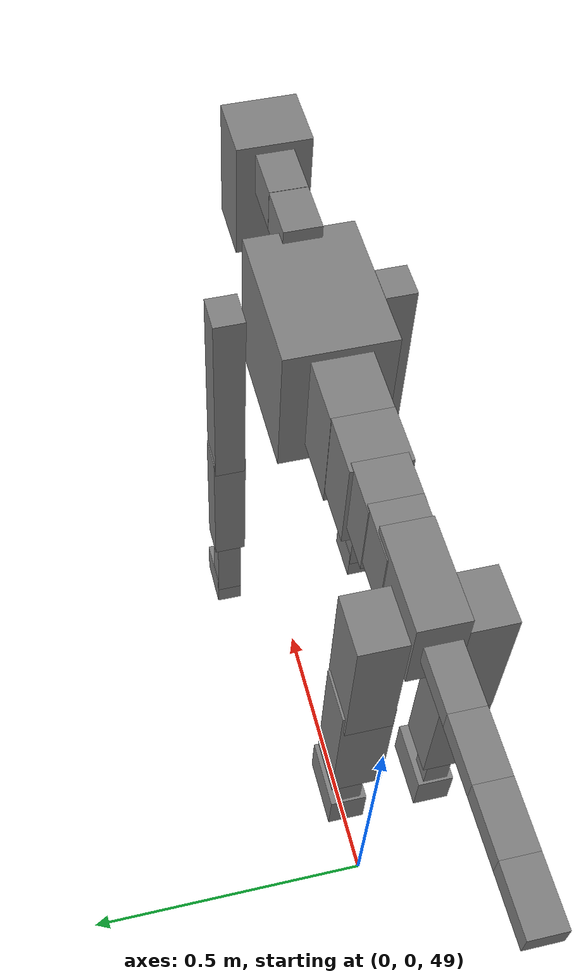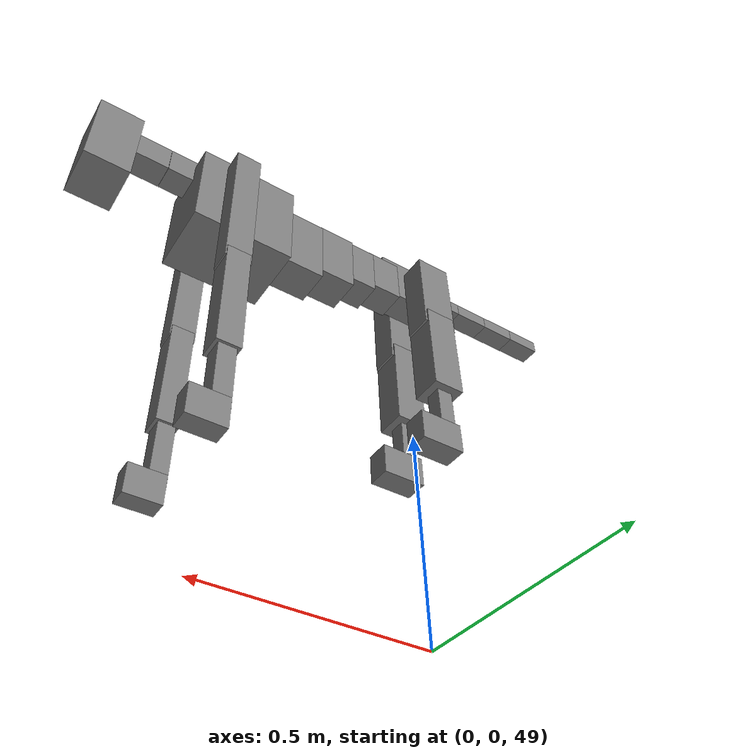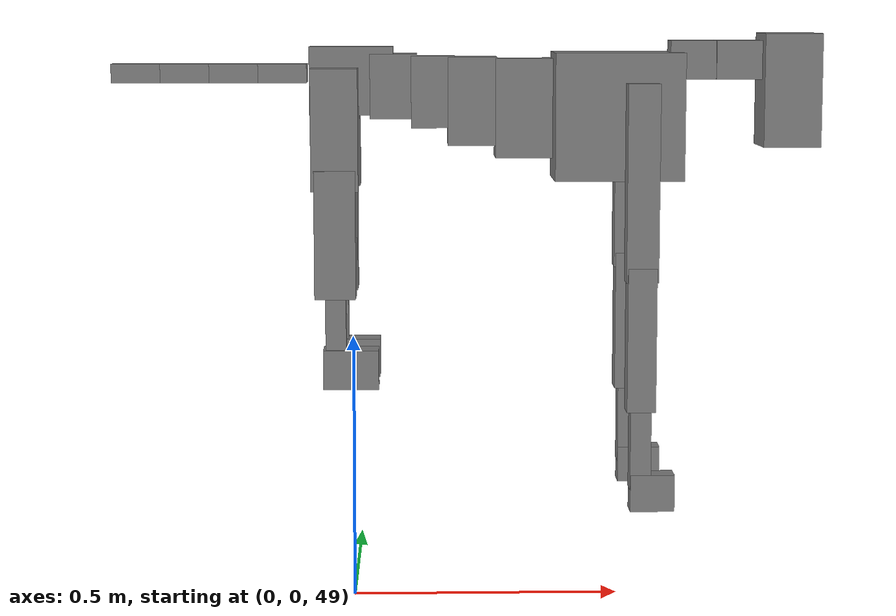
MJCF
<mujoco model="dog">

    <default>
        <joint armature="0.02" stiffness="1" damping="0.2" limited="true"/>
        <geom condim="3" friction="1 0.05 0.05" margin="0.01"/>
        <motor ctrllimited="true" ctrlrange="-1.0 1.0" forcelimited="true" gear="50"/>
    </default>

    <compiler inertiafromgeom="true" angle="radian"/>

    <option timestep="0.016" iterations="50" tolerance="1e-10" solver="Newton" jacobian="dense" cone="pyramidal"/>

    <size nconmax="20000" njmax="60000" nstack="5000000"/>
    <visual>
        <map force="0.1" zfar="30"/>
        <rgba haze="0.15 0.25 0.35 1"/>
        <quality shadowsize="2048"/>
        <global offwidth="800" offheight="800"/>
    </visual>

    <asset>
        <texture type="skybox" builtin="gradient" rgb1="0.3 0.5 0.7" rgb2="0 0 0" width="512" height="512"/>
        <texture name="texplane" type="2d" builtin="checker" rgb1=".2 .3 .4" rgb2=".1 0.15 0.2" width="512" height="512"
                 mark="cross" markrgb=".8 .8 .8"/>
        <texture name="texgeom" type="cube" builtin="flat" mark="cross" width="127" height="1278" rgb1="0.8 0.6 0.4"
                 rgb2="0.8 0.6 0.4" markrgb="1 1 1" random="0.01"/>

        <material name="matplane" reflectance="0.3" texture="texplane" texrepeat="1 1" texuniform="true"/>
        <material name="matgeom" texture="texgeom" texuniform="true" rgba="0.8 0.6 .4 1"/>
    </asset>

    <worldbody>
        <geom name="floor" pos="0 0 0" size="0 0 .25" type="plane" material="matplane" condim="3"/>

        <light directional="false" diffuse=".2 .2 .2" specular="0 0 0" pos="0 0 5" dir="0 0 -1" castshadow="false"/>
        <light mode="targetbodycom" target="torso" directional="false" diffuse=".8 .8 .8" specular="0.3 0.3 0.3"
               pos="0 0 4.0" dir="0 0 -1"/>

        <body name="root" pos="0 0 50">
            <freejoint name="root_1"/>
            <geom type="box" pos="0 0 -0.02" size="0.0774  0.0358  0.063" density="2030"/>

            <body name="spine1" pos="0.054 0 0">
                <joint name="spine1_y" axis="0 1 0" range="0 0.7" limited="true"/>
                <geom type="box" pos="0.02375 0 -0.03" size="0.04375  0.0375  0.05985" density="2030"/>

                <body name="spine2" pos="0.0612 0 0">
                    <joint name="spine2_y" axis="0 1 0" range="-0.15 0.15" limited="true"/>
                    <geom type="box" pos="0.03555  0  -0.04" size="0.04055  0.039  0.06615" density="2030"/>

                    <body name="spine3" pos="0.0730 0 0">
                        <joint name="spine3_y" axis="0 1 0" range="-0.15 0.15" limited="true"/>
                        <geom type="box" pos="0.03555  0  -0.057" size="0.04555  0.0445  0.081" density="2030"/>

                        <body name="spine4" pos="0.0780 0 0">
                            <joint name="spine4_y" axis="0 1 0" range="-0.15 0.15" limited="true"/>
                            <geom type="box" pos="0.05265  0  -0.07" size="0.05265  0.045  0.09135" density="2030"/>

                            <body name="torso" pos="0.1082 0 0">
                                <joint name="torso_y" axis="0 1 0" range="-0.15 0.15" limited="true"/>
                                <geom type="box" pos="0.11925  0  -0.085" size="0.11925  0.085  0.11745"
                                      density="2030"/>

                                <body name="neck1" pos="0.2160  0   0.0180">
                                    <joint name="neck1_y" axis="0 1 0" range="-1.2  -1" limited="true"/>
                                    <geom type="box" pos="0.0423  0  0" size="0.0423  0.03  0.036" density="2325"/>

                                    <body name="neck2" pos="0.0853  0  0">
                                        <joint name="neck2_y" axis="0 1 0" range="0.1  0" limited="true"/>
                                        <geom type="box" pos="0.0423  0  0" size="0.0423  0.03  0.036" density="2325"/>

                                        <body name="head" pos="0.0853  0  0">
                                            <joint name="head_y" axis="0 1 0" range="-0.3  -0.2" limited="true"/>
                                            <geom type="box" pos="0.0531  0  -0.055" size="0.0531  0.06  0.1044"
                                                  density="4030"/>

                                        </body>
                                    </body>
                                </body>

                                <body name="front_shoulder" pos="0.156  0   -0.0480">
                                    <joint name="front_shoulder_y" axis="0 1 0" range="-1 1.5" limited="true"/>
                                    <geom type="box" pos="0 0.13 -0.1535" size="0.0294  0.0251  0.1801" density="1158"/>
                                    <geom type="box" pos="0 -0.13 -0.1535" size="0.0294  0.0251  0.1801"
                                          density="1158"/>

                                    <body name="front_elbow" pos="0  0  -0.3070">
                                        <joint name="front_elbow_y" axis="0 1 0" range="-2 0" limited="true"/>
                                        <geom type="box" pos="0 0.13 -0.1323" size="0.0265  0.0271  0.1323"
                                              density="1081"/>
                                        <geom type="box" pos="0 -0.13 -0.1323" size="0.0265  0.0271  0.1323"
                                              density="1081"/>

                                        <body name="front_wrist" pos="0  0  -0.2646">
                                            <joint name="front_wrist_y" axis="0 1 0" range="-0.2 0" limited="true"/>
                                            <geom type="box" pos="0 0.13 -0.0665" size="0.0192  0.0213  0.0796"
                                                  density="1664"/>
                                            <geom type="box" pos="0 -0.13 -0.0665" size="0.0192  0.0213  0.0796"
                                                  density="1664"/>

                                            <body name="front_finger_end" pos="0  0  -0.1330">
                                                <joint name="front_finger_y" axis="0 1 0" range="-0.4 1"
                                                       limited="true"/>
                                                <geom type="box" pos="0.0223  0.13  -0.0192"
                                                      size="0.0408  0.0223  0.0342" density="1515"/>
                                                <geom type="box" pos="0.0223  -0.13  -0.0192"
                                                      size="0.0408  0.0223  0.0342" density="1515"/>

                                            </body>

                                        </body>
                                    </body>
                                </body>

                            </body>
                        </body>
                    </body>
                </body>
            </body>

            <body name="back_hip" pos="-0.03 0 -0.018">
                <joint name="back_hip_y" axis="0 1 0" range="-1.5 0.3" limited="true"/>
                <geom type="box" pos="0 0.07 -0.0891" size="0.0431  0.0338  0.1119" density="1154"/>
                <geom type="box" pos="0 -0.07 -0.0891" size="0.0431  0.0338  0.1119" density="1154"/>

                <body name="back_knee" pos="0  0  -0.1783">
                    <joint name="back_knee_y" axis="0 1 0" range="0 2.8" limited="true"/>
                    <geom type="box" pos="0 0.07 -0.1023" size="0.0378  0.0373  0.1178" density="1227"/>
                    <geom type="box" pos="0 -0.07 -0.1023" size="0.0378  0.0373  0.1178" density="1227"/>

                    <body name="back_ankle" pos="0  0  -0.2046">
                        <joint name="back_ankle_y" axis="0 1 0" range="-2.2 0" limited="true"/>
                        <geom type="box" pos="0 0.07 -0.0633" size="0.0189  0.0189  0.0745" density="1284"/>
                        <geom type="box" pos="0 -0.07 -0.0633" size="0.0189  0.0189  0.0745" density="1284"/>

                        <body name="back_toe_end" pos="0  0  -0.1265">
                            <joint name="back_toe_y" axis="0 1 0" range="-0.4 1" limited="true"/>
                            <geom type="box" pos="0.0279  0.07  -0.0215" size="0.0512  0.0279  0.0365" density="1515"/>
                            <geom type="box" pos="0.0279  -0.07  -0.0215" size="0.0512  0.0279  0.0365" density="1515"/>

                        </body>
                    </body>
                </body>
            </body>

            <body name="tail1" pos="-0.074 0 -0.006">
                <joint name="tail1_y" axis="0 1 0" range="-0.2 0.2" limited="true"/>
                <geom type="box" pos="-0.0536  0  0" size="0.045  0.025  0.0175" density="1587"/>

                <body name="tail2" pos="-0.09 0 0">
                    <joint name="tail2_y" axis="0 1 0" range="-0.2 0.2" limited="true"/>
                    <geom type="box" pos="-0.0536  0  0" size="0.045  0.025  0.0175" density="1587"/>

                    <body name="tail3" pos="-0.09 0 0">
                        <joint name="tail3_y" axis="0 1 0" range="-0.2 0.2" limited="true"/>
                        <geom type="box" pos="-0.0536  0  0" size="0.045  0.025  0.0175" density="1587"/>

                        <body name="tail4" pos="-0.09 0 0">
                            <joint name="tail4_y" axis="0 1 0" range="-0.2 0.2" limited="true"/>
                            <geom type="box" pos="-0.0536  0  0" size="0.045  0.025  0.0175" density="1587"/>

                        </body>
                    </body>
                </body>
            </body>
        </body>
    </worldbody>

    <actuator>
        <motor joint="spine1_y" forcerange="-150 150     "/>
        <motor joint="spine2_y" forcerange="-150 150     "/>
        <motor joint="spine3_y" forcerange="-150 150     "/>
        <motor joint="spine4_y" forcerange="-150 150     "/>
        <motor joint="torso_y" forcerange="-150 150     "/>
        <motor joint="neck1_y" forcerange="-100 100       "/>
        <motor joint="neck2_y" forcerange="-100 100       "/>
        <motor joint="head_y" forcerange="-150 150       "/>
        <motor joint="front_shoulder_y" forcerange="-111.84 155.76"/>
        <motor joint="front_elbow_y" forcerange="-149.64 147.33"/>
        <motor joint="front_wrist_y" forcerange="-73.58 96.88"/>
        <motor joint="front_finger_y" forcerange="-20.05 58.78"/>
        <motor joint="back_hip_y" forcerange="-306.78 344.09"/>
        <motor joint="back_knee_y" forcerange="-358.56 383.49"/>
        <motor joint="back_angle_y" forcerange="-57.59 145.09"/>
        <motor joint="back_toe_y" forcerange="-22.18 121.18"/>
        <motor joint="tail1_y" forcerange="-50 50     "/>
        <motor joint="tail2_y" forcerange="-50 50     "/>
        <motor joint="tail3_y" forcerange="-50 50     "/>
        <motor joint="tail4_y" forcerange="-50 50     "/>
    </actuator>
</mujoco>
